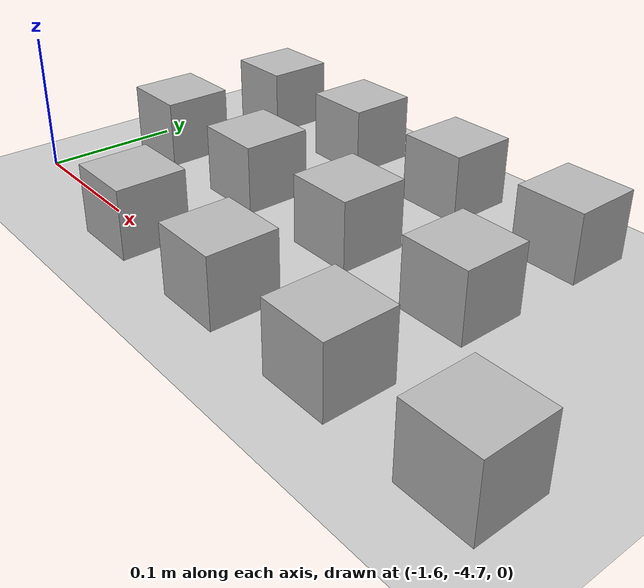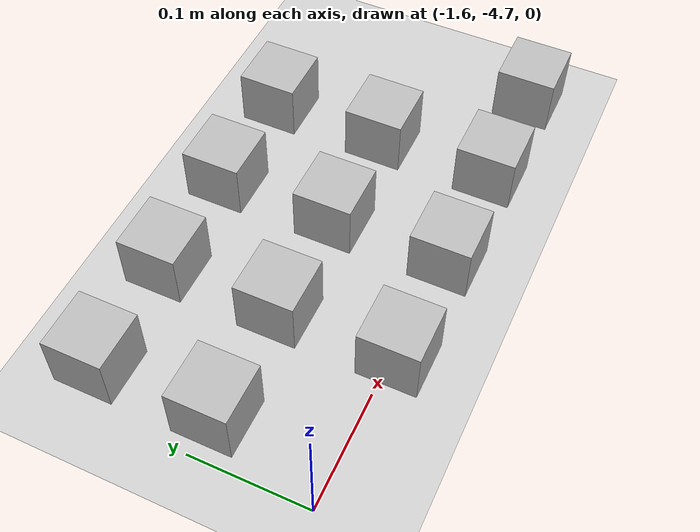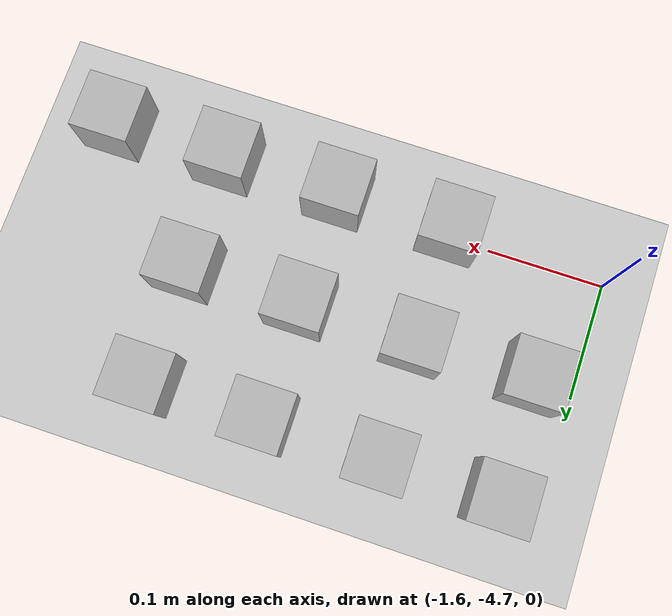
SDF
<sdf version="1.6">
 <world name="default">
  <model name="ground_plane">
   <static>1</static>
   <link name="link">
    <collision name="collision">
     <geometry><plane><normal>0 0 1</normal><size>100 100</size></plane></geometry>
     <surface><friction><ode><mu>100</mu><mu2>50</mu2></ode></friction></surface>
    </collision>
    <visual name="visual">
     <cast_shadows>0</cast_shadows>
     <geometry><plane><normal>0 0 1</normal><size>100 100</size></plane></geometry>
     <material>
      <script><uri>file://media/materials/scripts/gazebo.material</uri><name>Gazebo/Grey</name></script>
     </material>
    </visual>
   </link>
  </model>
  <model name="at3">
   <static>0</static>
   <link name="link">
    <inertial>
     <mass>0.01</mass>
     <inertia><ixx>4e-05</ixx><ixy>0</ixy><ixz>0</ixz><iyy>4e-05</iyy><iyz>0</iyz><izz>4e-05</izz></inertia>
    </inertial>
    <visual name="visual">
     <geometry><box><size>0.05 0.05 0.05</size></box></geometry>
     <material>
      <script>
       <uri>model://at0/materials/scripts</uri>
       <uri>model://at0/materials/textures</uri>
       <name>at0/Diffuse</name>
      </script>
     </material>
    </visual>
    <collision name="collision">
     <geometry><box><size>0.05 0.05 0.05</size></box></geometry>
     <surface><friction><ode><mu>0.8</mu><mu2>0.7</mu2></ode></friction></surface>
    </collision>
   </link>
   <pose>-1.4635 -4.70545 0.024993 -2.9e-05 2.9e-05 -1e-06</pose>
  </model>
  <model name="at4">
   <static>0</static>
   <link name="link">
    <inertial>
     <mass>0.01</mass>
     <inertia><ixx>4e-05</ixx><ixy>0</ixy><ixz>0</ixz><iyy>4e-05</iyy><iyz>0</iyz><izz>4e-05</izz></inertia>
    </inertial>
    <visual name="visual">
     <geometry><box><size>0.05 0.05 0.05</size></box></geometry>
     <material>
      <script>
       <uri>model://at0/materials/scripts</uri>
       <uri>model://at0/materials/textures</uri>
       <name>at0/Diffuse</name>
      </script>
     </material>
    </visual>
    <collision name="collision">
     <geometry><box><size>0.05 0.05 0.05</size></box></geometry>
     <surface><friction><ode><mu>0.8</mu><mu2>0.7</mu2></ode></friction></surface>
    </collision>
   </link>
   <pose>-1.3635 -4.70545 0.024993 -2.9e-05 2.9e-05 -1e-06</pose>
  </model>
  <model name="at5">
   <static>0</static>
   <link name="link">
    <inertial>
     <mass>0.01</mass>
     <inertia><ixx>4e-05</ixx><ixy>0</ixy><ixz>0</ixz><iyy>4e-05</iyy><iyz>0</iyz><izz>4e-05</izz></inertia>
    </inertial>
    <visual name="visual">
     <geometry><box><size>0.05 0.05 0.05</size></box></geometry>
     <material>
      <script>
       <uri>model://at0/materials/scripts</uri>
       <uri>model://at0/materials/textures</uri>
       <name>at0/Diffuse</name>
      </script>
     </material>
    </visual>
    <collision name="collision">
     <geometry><box><size>0.05 0.05 0.05</size></box></geometry>
     <surface><friction><ode><mu>0.8</mu><mu2>0.7</mu2></ode></friction></surface>
    </collision>
   </link>
   <pose>-1.2635 -4.70545 0.024993 -2.9e-05 2.9e-05 -1e-06</pose>
  </model>
  <model name="at6">
   <static>0</static>
   <link name="link">
    <inertial>
     <mass>0.01</mass>
     <inertia><ixx>4e-05</ixx><ixy>0</ixy><ixz>0</ixz><iyy>4e-05</iyy><iyz>0</iyz><izz>4e-05</izz></inertia>
    </inertial>
    <visual name="visual">
     <geometry><box><size>0.05 0.05 0.05</size></box></geometry>
     <material>
      <script>
       <uri>model://at0/materials/scripts</uri>
       <uri>model://at0/materials/textures</uri>
       <name>at0/Diffuse</name>
      </script>
     </material>
    </visual>
    <collision name="collision">
     <geometry><box><size>0.05 0.05 0.05</size></box></geometry>
     <surface><friction><ode><mu>0.8</mu><mu2>0.7</mu2></ode></friction></surface>
    </collision>
   </link>
   <pose>-1.1635 -4.70545 0.024993 -2.9e-05 2.9e-05 -1e-06</pose>
  </model>
  <model name="at10">
   <static>0</static>
   <link name="link">
    <inertial>
     <mass>0.01</mass>
     <inertia><ixx>4e-05</ixx><ixy>0</ixy><ixz>0</ixz><iyy>4e-05</iyy><iyz>0</iyz><izz>4e-05</izz></inertia>
    </inertial>
    <visual name="visual">
     <geometry><box><size>0.05 0.05 0.05</size></box></geometry>
     <material>
      <script>
       <uri>model://at0/materials/scripts</uri>
       <uri>model://at0/materials/textures</uri>
       <name>at0/Diffuse</name>
      </script>
     </material>
    </visual>
    <collision name="collision">
     <geometry><box><size>0.05 0.05 0.05</size></box></geometry>
     <surface><friction><ode><mu>0.8</mu><mu2>0.7</mu2></ode></friction></surface>
    </collision>
   </link>
   <pose>-1.5635 -4.60545 0.024993 -2.9e-05 2.9e-05 -1e-06</pose>
  </model>
  <model name="at11">
   <static>0</static>
   <link name="link">
    <inertial>
     <mass>0.01</mass>
     <inertia><ixx>4e-05</ixx><ixy>0</ixy><ixz>0</ixz><iyy>4e-05</iyy><iyz>0</iyz><izz>4e-05</izz></inertia>
    </inertial>
    <visual name="visual">
     <geometry><box><size>0.05 0.05 0.05</size></box></geometry>
     <material>
      <script>
       <uri>model://at0/materials/scripts</uri>
       <uri>model://at0/materials/textures</uri>
       <name>at0/Diffuse</name>
      </script>
     </material>
    </visual>
    <collision name="collision">
     <geometry><box><size>0.05 0.05 0.05</size></box></geometry>
     <surface><friction><ode><mu>0.8</mu><mu2>0.7</mu2></ode></friction></surface>
    </collision>
   </link>
   <pose>-1.4635 -4.60545 0.024993 -2.9e-05 2.9e-05 -1e-06</pose>
  </model>
  <model name="at12">
   <static>0</static>
   <link name="link">
    <inertial>
     <mass>0.01</mass>
     <inertia><ixx>4e-05</ixx><ixy>0</ixy><ixz>0</ixz><iyy>4e-05</iyy><iyz>0</iyz><izz>4e-05</izz></inertia>
    </inertial>
    <visual name="visual">
     <geometry><box><size>0.05 0.05 0.05</size></box></geometry>
     <material>
      <script>
       <uri>model://at0/materials/scripts</uri>
       <uri>model://at0/materials/textures</uri>
       <name>at0/Diffuse</name>
      </script>
     </material>
    </visual>
    <collision name="collision">
     <geometry><box><size>0.05 0.05 0.05</size></box></geometry>
     <surface><friction><ode><mu>0.8</mu><mu2>0.7</mu2></ode></friction></surface>
    </collision>
   </link>
   <pose>-1.3635 -4.60545 0.024993 -2.9e-05 2.9e-05 -1e-06</pose>
  </model>
  <model name="at13">
   <static>0</static>
   <link name="link">
    <inertial>
     <mass>0.01</mass>
     <inertia><ixx>4e-05</ixx><ixy>0</ixy><ixz>0</ixz><iyy>4e-05</iyy><iyz>0</iyz><izz>4e-05</izz></inertia>
    </inertial>
    <visual name="visual">
     <geometry><box><size>0.05 0.05 0.05</size></box></geometry>
     <material>
      <script>
       <uri>model://at0/materials/scripts</uri>
       <uri>model://at0/materials/textures</uri>
       <name>at0/Diffuse</name>
      </script>
     </material>
    </visual>
    <collision name="collision">
     <geometry><box><size>0.05 0.05 0.05</size></box></geometry>
     <surface><friction><ode><mu>0.8</mu><mu2>0.7</mu2></ode></friction></surface>
    </collision>
   </link>
   <pose>-1.2635 -4.60545 0.024993 -2.9e-05 2.9e-05 -1e-06</pose>
  </model>
  <model name="at18">
   <static>0</static>
   <link name="link">
    <inertial>
     <mass>0.01</mass>
     <inertia><ixx>4e-05</ixx><ixy>0</ixy><ixz>0</ixz><iyy>4e-05</iyy><iyz>0</iyz><izz>4e-05</izz></inertia>
    </inertial>
    <visual name="visual">
     <geometry><box><size>0.05 0.05 0.05</size></box></geometry>
     <material>
      <script>
       <uri>model://at0/materials/scripts</uri>
       <uri>model://at0/materials/textures</uri>
       <name>at0/Diffuse</name>
      </script>
     </material>
    </visual>
    <collision name="collision">
     <geometry><box><size>0.05 0.05 0.05</size></box></geometry>
     <surface><friction><ode><mu>0.8</mu><mu2>0.7</mu2></ode></friction></surface>
    </collision>
   </link>
   <pose>-1.5635 -4.50545 0.024993 -2.9e-05 2.9e-05 -1e-06</pose>
  </model>
  <model name="at19">
   <static>0</static>
   <link name="link">
    <inertial>
     <mass>0.01</mass>
     <inertia><ixx>4e-05</ixx><ixy>0</ixy><ixz>0</ixz><iyy>4e-05</iyy><iyz>0</iyz><izz>4e-05</izz></inertia>
    </inertial>
    <visual name="visual">
     <geometry><box><size>0.05 0.05 0.05</size></box></geometry>
     <material>
      <script>
       <uri>model://at0/materials/scripts</uri>
       <uri>model://at0/materials/textures</uri>
       <name>at0/Diffuse</name>
      </script>
     </material>
    </visual>
    <collision name="collision">
     <geometry><box><size>0.05 0.05 0.05</size></box></geometry>
     <surface><friction><ode><mu>0.8</mu><mu2>0.7</mu2></ode></friction></surface>
    </collision>
   </link>
   <pose>-1.4635 -4.50545 0.024993 -2.9e-05 2.9e-05 -1e-06</pose>
  </model>
  <model name="at20">
   <static>0</static>
   <link name="link">
    <inertial>
     <mass>0.01</mass>
     <inertia><ixx>4e-05</ixx><ixy>0</ixy><ixz>0</ixz><iyy>4e-05</iyy><iyz>0</iyz><izz>4e-05</izz></inertia>
    </inertial>
    <visual name="visual">
     <geometry><box><size>0.05 0.05 0.05</size></box></geometry>
     <material>
      <script>
       <uri>model://at0/materials/scripts</uri>
       <uri>model://at0/materials/textures</uri>
       <name>at0/Diffuse</name>
      </script>
     </material>
    </visual>
    <collision name="collision">
     <geometry><box><size>0.05 0.05 0.05</size></box></geometry>
     <surface><friction><ode><mu>0.8</mu><mu2>0.7</mu2></ode></friction></surface>
    </collision>
   </link>
   <pose>-1.3635 -4.50545 0.024993 -2.9e-05 2.9e-05 -1e-06</pose>
  </model>
  <model name="at21">
   <static>0</static>
   <link name="link">
    <inertial>
     <mass>0.01</mass>
     <inertia><ixx>4e-05</ixx><ixy>0</ixy><ixz>0</ixz><iyy>4e-05</iyy><iyz>0</iyz><izz>4e-05</izz></inertia>
    </inertial>
    <visual name="visual">
     <geometry><box><size>0.05 0.05 0.05</size></box></geometry>
     <material>
      <script>
       <uri>model://at0/materials/scripts</uri>
       <uri>model://at0/materials/textures</uri>
       <name>at0/Diffuse</name>
      </script>
     </material>
    </visual>
    <collision name="collision">
     <geometry><box><size>0.05 0.05 0.05</size></box></geometry>
     <surface><friction><ode><mu>0.8</mu><mu2>0.7</mu2></ode></friction></surface>
    </collision>
   </link>
   <pose>-1.2635 -4.50545 0.024993 -2.9e-05 2.9e-05 -1e-06</pose>
  </model>
 </world>
</sdf>
